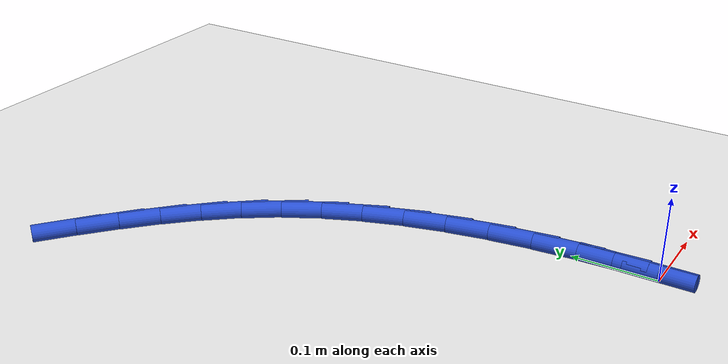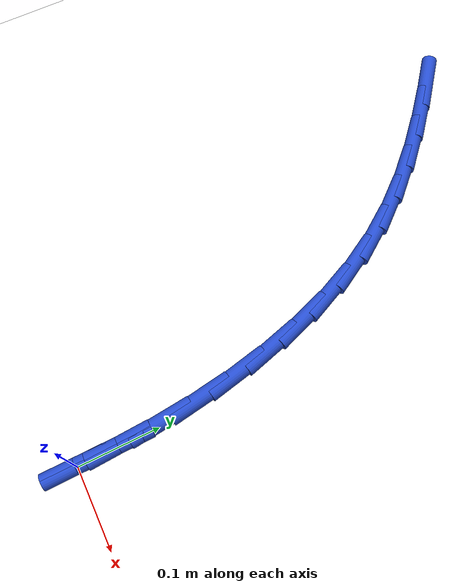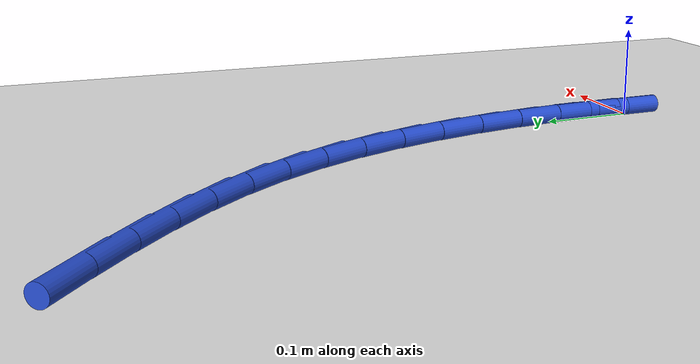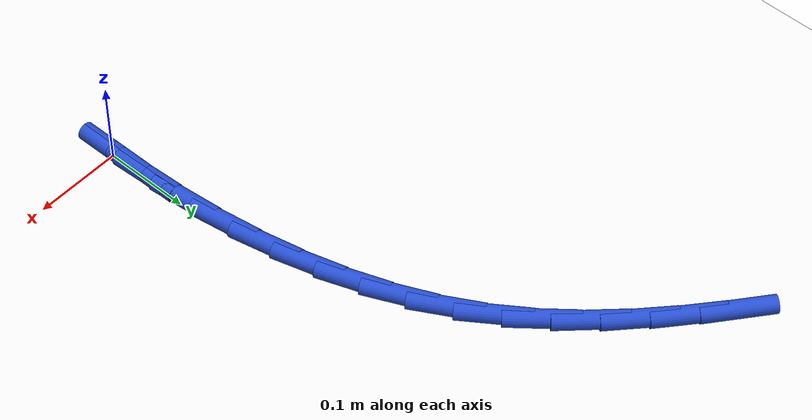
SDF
<sdf version="1.6">
 <world name="default">
  <model name="ground_plane">
   <static>1</static>
   <link name="link">
    <collision name="collision">
     <geometry><plane><normal>0 0 1</normal><size>100 100</size></plane></geometry>
     <surface><friction><ode><mu>100</mu><mu2>50</mu2></ode></friction></surface>
    </collision>
    <visual name="visual">
     <cast_shadows>0</cast_shadows>
     <geometry><plane><normal>0 0 1</normal><size>100 100</size></plane></geometry>
     <material>
      <script><uri>file://media/materials/scripts/gazebo.material</uri><name>Gazebo/WhiteGlow</name></script>
     </material>
    </visual>
   </link>
  </model>
  <model name="line">
   <link name="link_0">
    <pose>4.683753385137379e-17 -1.3877787807814457e-17 0.01 0 1.57 -1.5644343418823194</pose>
    <collision name="collision">
     <geometry><cylinder><radius>0.01</radius><length>0.08</length></cylinder></geometry>
    </collision>
    <visual name="visual">
     <material>
      <script><name>Gazebo/Blue</name><uri>file://media/materials/scripts/gazebo.material</uri></script>
     </material>
     <geometry><cylinder><radius>0.01</radius><length>0.08</length></cylinder></geometry>
    </visual>
   </link>
   <link name="link_1">
    <pose>-0.0003307974758177523 0.051995252638659444 0.01 0 1.57 -1.5210663215368492</pose>
    <collision name="collision">
     <geometry><cylinder><radius>0.01</radius><length>0.08</length></cylinder></geometry>
    </collision>
    <visual name="visual">
     <material>
      <script><name>Gazebo/Blue</name><uri>file://media/materials/scripts/gazebo.material</uri></script>
     </material>
     <geometry><cylinder><radius>0.01</radius><length>0.08</length></cylinder></geometry>
    </visual>
   </link>
   <link name="link_2">
    <pose>-0.0029157111445098052 0.10393135057628536 0.01 0 1.57 -1.4733955420133573</pose>
    <collision name="collision">
     <geometry><cylinder><radius>0.01</radius><length>0.08</length></cylinder></geometry>
    </collision>
    <visual name="visual">
     <material>
      <script><name>Gazebo/Blue</name><uri>file://media/materials/scripts/gazebo.material</uri></script>
     </material>
     <geometry><cylinder><radius>0.01</radius><length>0.08</length></cylinder></geometry>
    </visual>
   </link>
   <link name="link_3">
    <pose>-0.007950227587354284 0.15545645587021534 0.01 0 1.57 -1.4206492175962093</pose>
    <collision name="collision">
     <geometry><cylinder><radius>0.01</radius><length>0.08</length></cylinder></geometry>
    </collision>
    <visual name="visual">
     <material>
      <script><name>Gazebo/Blue</name><uri>file://media/materials/scripts/gazebo.material</uri></script>
     </material>
     <geometry><cylinder><radius>0.01</radius><length>0.08</length></cylinder></geometry>
    </visual>
   </link>
   <link name="link_4">
    <pose>-0.01562983338562936 0.20621873057778703 0.01 0 1.57 -1.361987895294945</pose>
    <collision name="collision">
     <geometry><cylinder><radius>0.01</radius><length>0.08</length></cylinder></geometry>
    </collision>
    <visual name="visual">
     <material>
      <script><name>Gazebo/Blue</name><uri>file://media/materials/scripts/gazebo.material</uri></script>
     </material>
     <geometry><cylinder><radius>0.01</radius><length>0.08</length></cylinder></geometry>
    </visual>
   </link>
   <link name="link_5">
    <pose>-0.026150015120613216 0.25586633675633796 0.01 0 1.57 -1.296526748862627</pose>
    <collision name="collision">
     <geometry><cylinder><radius>0.01</radius><length>0.08</length></cylinder></geometry>
    </collision>
    <visual name="visual">
     <material>
      <script><name>Gazebo/Blue</name><uri>file://media/materials/scripts/gazebo.material</uri></script>
     </material>
     <geometry><cylinder><radius>0.01</radius><length>0.08</length></cylinder></geometry>
    </visual>
   </link>
   <link name="link_6">
    <pose>-0.03970625937358403 0.30404743646320576 0.01 0 1.57 -1.2233859840469603</pose>
    <collision name="collision">
     <geometry><cylinder><radius>0.01</radius><length>0.08</length></cylinder></geometry>
    </collision>
    <visual name="visual">
     <material>
      <script><name>Gazebo/Blue</name><uri>file://media/materials/scripts/gazebo.material</uri></script>
     </material>
     <geometry><cylinder><radius>0.01</radius><length>0.08</length></cylinder></geometry>
    </visual>
   </link>
   <link name="link_7">
    <pose>-0.056494052725819935 0.3504101917557281 0.01 0 1.57 -1.141784177607053</pose>
    <collision name="collision">
     <geometry><cylinder><radius>0.01</radius><length>0.08</length></cylinder></geometry>
    </collision>
    <visual name="visual">
     <material>
      <script><name>Gazebo/Blue</name><uri>file://media/materials/scripts/gazebo.material</uri></script>
     </material>
     <geometry><cylinder><radius>0.01</radius><length>0.08</length></cylinder></geometry>
    </visual>
   </link>
   <link name="link_8">
    <pose>-0.07670888175859918 0.3946027646912424 0.01 0 1.57 -1.0511877769248263</pose>
    <collision name="collision">
     <geometry><cylinder><radius>0.01</radius><length>0.08</length></cylinder></geometry>
    </collision>
    <visual name="visual">
     <material>
      <script><name>Gazebo/Blue</name><uri>file://media/materials/scripts/gazebo.material</uri></script>
     </material>
     <geometry><cylinder><radius>0.01</radius><length>0.08</length></cylinder></geometry>
    </visual>
   </link>
   <link name="link_9">
    <pose>-0.10054621030954501 0.43627334399175166 0.01 0 1.57 -0.955598606079556</pose>
    <collision name="collision">
     <geometry><cylinder><radius>0.01</radius><length>0.08</length></cylinder></geometry>
    </collision>
    <visual name="visual">
     <material>
      <script><name>Gazebo/Blue</name><uri>file://media/materials/scripts/gazebo.material</uri></script>
     </material>
     <geometry><cylinder><radius>0.01</radius><length>0.08</length></cylinder></geometry>
    </visual>
   </link>
   <link name="link_10">
    <pose>-0.12807121258728746 0.47522286996483815 0.01 0 1.57 -0.869791252039072</pose>
    <collision name="collision">
     <geometry><cylinder><radius>0.01</radius><length>0.08</length></cylinder></geometry>
    </collision>
    <visual name="visual">
     <material>
      <script><name>Gazebo/Blue</name><uri>file://media/materials/scripts/gazebo.material</uri></script>
     </material>
     <geometry><cylinder><radius>0.01</radius><length>0.08</length></cylinder></geometry>
    </visual>
   </link>
   <link name="link_11">
    <pose>-0.15891240422252556 0.5117642215171214 0.01 0 1.57 -0.797979003728878</pose>
    <collision name="collision">
     <geometry><cylinder><radius>0.01</radius><length>0.08</length></cylinder></geometry>
    </collision>
    <visual name="visual">
     <material>
      <script><name>Gazebo/Blue</name><uri>file://media/materials/scripts/gazebo.material</uri></script>
     </material>
     <geometry><cylinder><radius>0.01</radius><length>0.08</length></cylinder></geometry>
    </visual>
   </link>
   <link name="link_12">
    <pose>-0.19260692754647304 0.5463174036287529 0.01 0 1.57 -0.7405465630877671</pose>
    <collision name="collision">
     <geometry><cylinder><radius>0.01</radius><length>0.08</length></cylinder></geometry>
    </collision>
    <visual name="visual">
     <material>
      <script><name>Gazebo/Blue</name><uri>file://media/materials/scripts/gazebo.material</uri></script>
     </material>
     <geometry><cylinder><radius>0.01</radius><length>0.08</length></cylinder></geometry>
    </visual>
   </link>
   <link name="link_13">
    <pose>-0.22869192489034354 0.5793024212798845 0.01 0 1.57 -0.6972122695389328</pose>
    <collision name="collision">
     <geometry><cylinder><radius>0.01</radius><length>0.08</length></cylinder></geometry>
    </collision>
    <visual name="visual">
     <material>
      <script><name>Gazebo/Blue</name><uri>file://media/materials/scripts/gazebo.material</uri></script>
     </material>
     <geometry><cylinder><radius>0.01</radius><length>0.08</length></cylinder></geometry>
    </visual>
   </link>
   <link name="link_14">
    <pose>-0.2667045385853505 0.6111392794506676 0.01 0 1.57 -0.6673892667338394</pose>
    <collision name="collision">
     <geometry><cylinder><radius>0.01</radius><length>0.08</length></cylinder></geometry>
    </collision>
    <visual name="visual">
     <material>
      <script><name>Gazebo/Blue</name><uri>file://media/materials/scripts/gazebo.material</uri></script>
     </material>
     <geometry><cylinder><radius>0.01</radius><length>0.08</length></cylinder></geometry>
    </visual>
   </link>
   <link name="link_140">
    <pose>6.071532165918825e-17 1.3877787807814457e-16 0.01 0 1.57 -1.5653391862060448</pose>
    <collision name="collision">
     <geometry><cylinder><radius>0.01</radius><length>0.08</length></cylinder></geometry>
    </collision>
    <visual name="visual">
     <material>
      <script><name>Gazebo/Blue</name><uri>file://media/materials/scripts/gazebo.material</uri></script>
     </material>
     <geometry><cylinder><radius>0.01</radius><length>0.08</length></cylinder></geometry>
    </visual>
   </link>
   <link name="link_141">
    <pose>-0.0002839268649751838 0.05202798825927997 0.01 0 1.57 -1.5653391862060453</pose>
    <collision name="collision">
     <geometry><cylinder><radius>0.01</radius><length>0.08</length></cylinder></geometry>
    </collision>
    <visual name="visual">
     <material>
      <script><name>Gazebo/Blue</name><uri>file://media/materials/scripts/gazebo.material</uri></script>
     </material>
     <geometry><cylinder><radius>0.01</radius><length>0.08</length></cylinder></geometry>
    </visual>
   </link>
  </model>
 </world>
</sdf>
